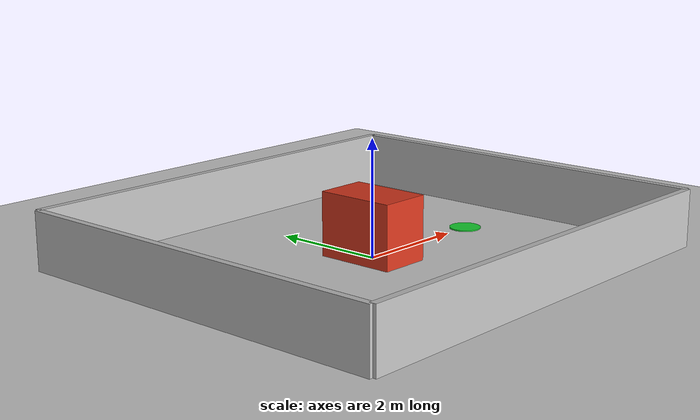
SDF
<?xml version="1.0"?>
<sdf version="1.6">
  <world name="single_obstacle_demo">
    <include><uri>model://ground_plane</uri></include>
    <include><uri>model://sun</uri></include>

    <physics name="default_physics" type="ode">
      <max_step_size>0.001</max_step_size>
      <real_time_factor>1.0</real_time_factor>
      <real_time_update_rate>1000</real_time_update_rate>
    </physics>

    <!-- A compact room makes the laser scan easy to inspect in RViz. -->
    <model name="room_walls">
      <static>true</static>
      <link name="walls">
        <collision name="north_collision"><pose>0 3.5 0.5 0 0 0</pose><geometry><box><size>8 0.12 1</size></box></geometry></collision>
        <visual name="north_visual"><pose>0 3.5 0.5 0 0 0</pose><geometry><box><size>8 0.12 1</size></box></geometry><material><ambient>0.75 0.75 0.75 1</ambient></material></visual>
        <collision name="south_collision"><pose>0 -3.5 0.5 0 0 0</pose><geometry><box><size>8 0.12 1</size></box></geometry></collision>
        <visual name="south_visual"><pose>0 -3.5 0.5 0 0 0</pose><geometry><box><size>8 0.12 1</size></box></geometry><material><ambient>0.75 0.75 0.75 1</ambient></material></visual>
        <collision name="east_collision"><pose>4 0 0.5 0 0 0</pose><geometry><box><size>0.12 7 1</size></box></geometry></collision>
        <visual name="east_visual"><pose>4 0 0.5 0 0 0</pose><geometry><box><size>0.12 7 1</size></box></geometry><material><ambient>0.75 0.75 0.75 1</ambient></material></visual>
        <collision name="west_collision"><pose>-4 0 0.5 0 0 0</pose><geometry><box><size>0.12 7 1</size></box></geometry></collision>
        <visual name="west_visual"><pose>-4 0 0.5 0 0 0</pose><geometry><box><size>0.12 7 1</size></box></geometry><material><ambient>0.75 0.75 0.75 1</ambient></material></visual>
      </link>
    </model>

    <!-- The one obstacle the robot must drive around. -->
    <model name="single_obstacle">
      <static>true</static>
      <pose>0 0 0.55 0 0 0</pose>
      <link name="body">
        <collision name="collision"><geometry><box><size>0.9 1.4 1.1</size></box></geometry></collision>
        <visual name="visual">
          <geometry><box><size>0.9 1.4 1.1</size></box></geometry>
          <material><ambient>0.85 0.22 0.12 1</ambient><diffuse>0.85 0.22 0.12 1</diffuse></material>
        </visual>
      </link>
    </model>

    <!-- Visual-only goal marker at the end of the route. -->
    <model name="goal_marker">
      <static>true</static>
      <pose>2.5 0 0.012 0 0 0</pose>
      <link name="marker">
        <visual name="visual">
          <geometry><cylinder><radius>0.28</radius><length>0.02</length></cylinder></geometry>
          <material><ambient>0.1 0.85 0.2 1</ambient><diffuse>0.1 0.85 0.2 1</diffuse></material>
        </visual>
      </link>
    </model>

    <gui fullscreen="0">
      <camera name="user_camera">
        <pose>-0.3 -0.3 10.5 0 1.5707 0</pose>
        <view_controller>orbit</view_controller>
      </camera>
    </gui>
  </world>
</sdf>
